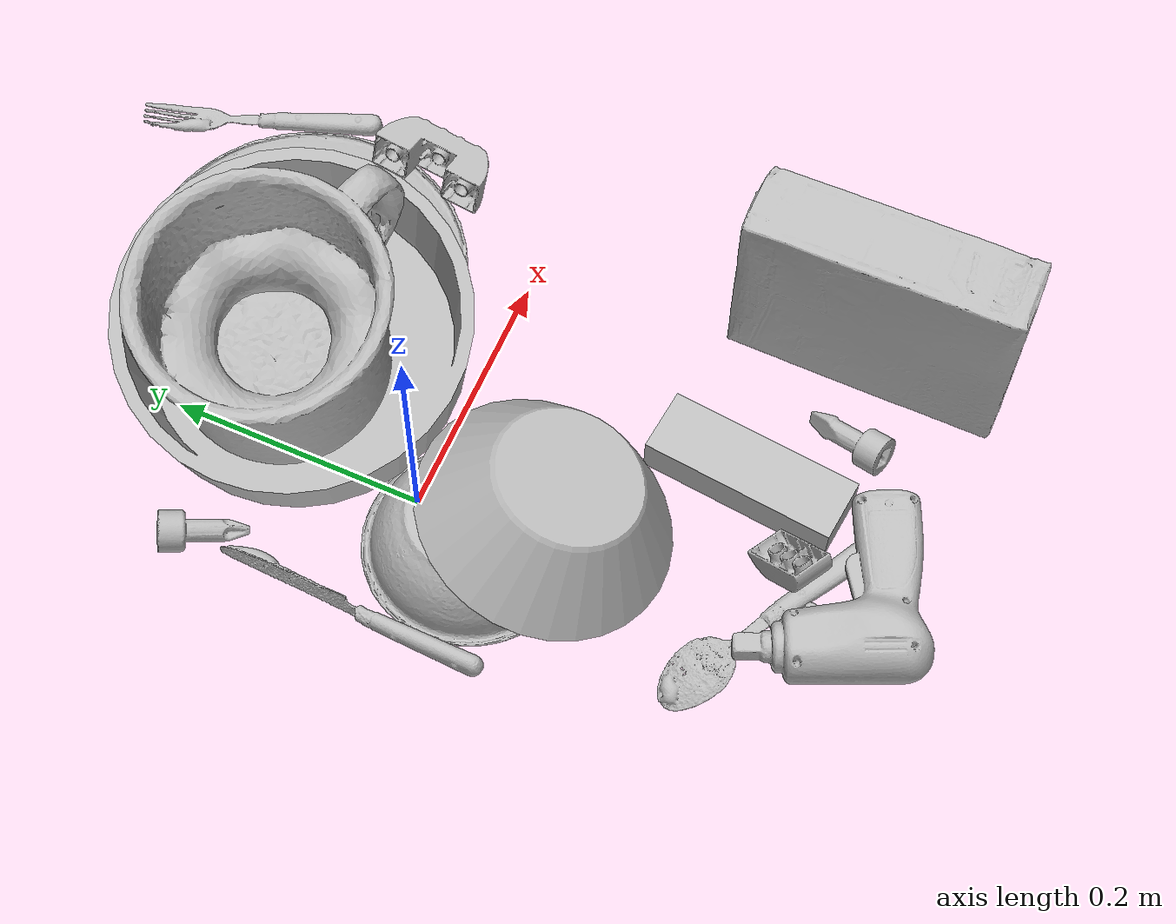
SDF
<sdf version="1.4">
  <world name="default">
    <light name="light1" type="point">
      <pose>0 0 1 0 0 0</pose>
      <diffuse>3 3 3 1</diffuse>
      <specular>3 3 3 1</specular>
    </light>
    <light name="light2" type="point">
      <pose>0 0.5 2 0 0 0</pose>
      <diffuse>1 1 1 1</diffuse>
      <specular>1 1 1 1</specular>
    </light>
    <light name="light3" type="point">
      <pose>0 0.5 2 0 0 0</pose>
      <diffuse>3 3 3 1</diffuse>
      <specular>3 3 3 1</specular>
    </light>
    <scene>
      <ambient>0.7 0.7 0.7</ambient>
    </scene>
    <model name="plate1">
      <link name="link_plate1">
        <collision name="default">
          <geometry>
            <mesh>
              <uri>model://plate/collision_meshes/collision.obj</uri>
              <scale>1.0 1.0 1.0</scale>
            </mesh>
          </geometry>
          <surface>
            <friction>
              <ode>
                <mu>0.5</mu>
                <mu2>0.5</mu2>
              </ode>
            </friction>
          <contact>
        <ode>
            <max_vel>0</max_vel>
            <min_depth>0.0001</min_depth>
            <kp>1e8</kp>
        </ode>
    </contact></surface>
        </collision>
        <visual name="default">
          <geometry>
            <mesh>
              <uri>model://plate/visual_meshes/visual.dae</uri>
              <scale>1.0 1.0 1.0</scale>
            </mesh>
          </geometry>
        </visual>
        <inertial>
          <mass>0.2627958059310913</mass>
          <pose>-0.0006044646725058556 0.00027825895813293755 -0.0010561998933553696 0.0022187866930069794 -0.0032254842153956703 0.4526099982878722</pose>
          <inertia>
            <ixx>0.0012293643</ixx>
            <iyy>0.0012176059</iyy>
            <izz>0.0024044532</izz>
            <ixy>0</ixy>
            <ixz>0</ixz>
            <iyz>0</iyz>
          </inertia>
        </inertial>
      </link>
      <pose>0.14647193253040314 0.17031025886535645 0.013905785977840424 3.1261795248209303 -0.007482211170960726 1.4426795168194604</pose>
    </model>
    <model name="plate2">
      <link name="link_plate2">
        <collision name="default">
          <geometry>
            <mesh>
              <uri>model://pan_tefal/collision_meshes/collision.obj</uri>
              <scale>1.0 1.0 1.0</scale>
            </mesh>
          </geometry>
          <surface>
            <friction>
              <ode>
                <mu>0.5</mu>
                <mu2>0.5</mu2>
              </ode>
            </friction>
          <contact>
        <ode>
            <max_vel>0</max_vel>
            <min_depth>0.0001</min_depth>
            <kp>1e8</kp>
        </ode>
    </contact></surface>
        </collision>
        <visual name="default">
          <geometry>
            <mesh>
              <uri>model://pan_tefal/visual_meshes/visual.dae</uri>
              <scale>1.0 1.0 1.0</scale>
            </mesh>
          </geometry>
        </visual>
        <inertial>
          <mass>1.5012701749801636</mass>
          <pose>-0.00018001999706029892 3.279017983004451e-05 -0.00851493701338768 0.0008190300793188327 -0.0003301349064117064 -0.3318640955526003</pose>
          <inertia>
            <ixx>0.010363197</ixx>
            <iyy>0.010430007</iyy>
            <izz>0.019076647</izz>
            <ixy>0</ixy>
            <ixz>0</ixz>
            <iyz>0</iyz>
          </inertia>
        </inertial>
      </link>
      <pose>0.06326378136873245 0.1251252144575119 0.06278791278600693 0.2046926807515838 0.06008011514812686 -1.4469592234043427</pose>
    </model>
    <model name="bowl1">
      <link name="link_bowl1">
        <collision name="default">
          <geometry>
            <mesh>
              <uri>model://bowl_a/collision_meshes/collision.obj</uri>
              <scale>1.0 1.0 1.0</scale>
            </mesh>
          </geometry>
          <surface>
            <friction>
              <ode>
                <mu>0.5</mu>
                <mu2>0.5</mu2>
              </ode>
            </friction>
          <contact>
        <ode>
            <max_vel>0</max_vel>
            <min_depth>0.0001</min_depth>
            <kp>1e8</kp>
        </ode>
    </contact></surface>
        </collision>
        <visual name="default">
          <geometry>
            <mesh>
              <uri>model://bowl_a/visual_meshes/visual.dae</uri>
              <scale>1.0 1.0 1.0</scale>
            </mesh>
          </geometry>
        </visual>
        <inertial>
          <mass>0.25230005383491516</mass>
          <pose>0.0002786753175314516 4.731153603643179e-05 -0.001376529224216938 -0.000980537182568925 -0.0010938202432478224 -0.19123453155183487</pose>
          <inertia>
            <ixx>0.00071831</ixx>
            <iyy>0.0007227198</iyy>
            <izz>0.0012775414</izz>
            <ixy>0</ixy>
            <ixz>0</ixz>
            <iyz>0</iyz>
          </inertia>
        </inertial>
      </link>
      <pose>0.019057681784033775 -0.10411354899406433 0.05836602300405502 -2.866492677156093 -0.13799679520970576 1.0358916293266425</pose>
    </model>
    <model name="bowl2">
      <link name="link_bowl2">
        <collision name="default">
          <geometry>
            <mesh>
              <uri>model://bowl/collision_meshes/collision.obj</uri>
              <scale>1.0 1.0 1.0</scale>
            </mesh>
          </geometry>
          <surface>
            <friction>
              <ode>
                <mu>0.5</mu>
                <mu2>0.5</mu2>
              </ode>
            </friction>
          <contact>
        <ode>
            <max_vel>0</max_vel>
            <min_depth>0.0001</min_depth>
            <kp>1e8</kp>
        </ode>
    </contact></surface>
        </collision>
        <visual name="default">
          <geometry>
            <mesh>
              <uri>model://bowl/visual_meshes/visual.dae</uri>
              <scale>1.0 1.0 1.0</scale>
            </mesh>
          </geometry>
        </visual>
        <inertial>
          <mass>0.09131127595901489</mass>
          <pose>0.00020444947585929185 -0.0010302107548341155 -0.0008042654953896999 -0.01576413996306862 0.014546728377416086 0.7140363947853973</pose>
          <inertia>
            <ixx>0.00020974927</ixx>
            <iyy>0.00020506265</iyy>
            <izz>0.00035287044</izz>
            <ixy>0</ixy>
            <ixz>0</ixz>
            <iyz>0</iyz>
          </inertia>
        </inertial>
      </link>
      <pose>-0.015676453709602356 -0.05077575892210007 0.027247557416558266 -3.132721375114016 0.0006766823941350178 -2.8428398656737532</pose>
    </model>
    <model name="silverware1">
      <link name="link_silverware1">
        <collision name="default">
          <geometry>
            <mesh>
              <uri>model://knife/collision_meshes/collision.obj</uri>
              <scale>1.0 1.0 1.0</scale>
            </mesh>
          </geometry>
          <surface>
            <friction>
              <ode>
                <mu>0.5</mu>
                <mu2>0.5</mu2>
              </ode>
            </friction>
          <contact>
        <ode>
            <max_vel>0</max_vel>
            <min_depth>0.0001</min_depth>
            <kp>1e8</kp>
        </ode>
    </contact></surface>
        </collision>
        <visual name="default">
          <geometry>
            <mesh>
              <uri>model://knife/visual_meshes/visual.dae</uri>
              <scale>1.0 1.0 1.0</scale>
            </mesh>
          </geometry>
        </visual>
        <inertial>
          <mass>0.033491987735033035</mass>
          <pose>-0.023785259574651718 0.00152751209679991 5.062024501967244e-05 0.07305195921562309 0.017248415702697233 -0.007409822782391368</pose>
          <inertia>
            <ixx>9.5063825e-07</ixx>
            <iyy>0.00012867076</iyy>
            <izz>0.00012897696</izz>
            <ixy>0</ixy>
            <ixz>0</ixz>
            <iyz>0</iyz>
          </inertia>
        </inertial>
      </link>
      <pose>-0.09843502938747406 0.006623029708862305 0.009879286400973797 -1.446264340420278 0.004169540716312294 1.5249890705051545</pose>
    </model>
    <model name="box1">
      <link name="link_box1">
        <collision name="default">
          <geometry>
            <mesh>
              <uri>model://cracker_box/collision_meshes/collision.obj</uri>
              <scale>1.0 1.0 1.0</scale>
            </mesh>
          </geometry>
          <surface>
            <friction>
              <ode>
                <mu>0.5</mu>
                <mu2>0.5</mu2>
              </ode>
            </friction>
          <contact>
        <ode>
            <max_vel>0</max_vel>
            <min_depth>0.0001</min_depth>
            <kp>1e8</kp>
        </ode>
    </contact></surface>
        </collision>
        <visual name="default">
          <geometry>
            <mesh>
              <uri>model://cracker_box/visual_meshes/visual.dae</uri>
              <scale>1.0 1.0 1.0</scale>
            </mesh>
          </geometry>
        </visual>
        <inertial>
          <mass>3.401942253112793</mass>
          <pose>0.0009464150061830878 0.00025434247800149024 -0.001702953246422112 -0.00031620765582640923 -0.011106486806186075 0.0025467954673401043</pose>
          <inertia>
            <ixx>0.008653021</ixx>
            <iyy>0.014287839</iyy>
            <izz>0.020390058</izz>
            <ixy>0</ixy>
            <ixz>0</ixz>
            <iyz>0</iyz>
          </inertia>
        </inertial>
      </link>
      <pose>0.25109466910362244 -0.2623668313026428 0.08175769448280334 1.5452335160817046 0.00904036339948285 1.5684862046521737</pose>
    </model>
    <model name="box2">
      <link name="link_box2">
        <collision name="default">
          <geometry>
            <mesh>
              <uri>model://jenga/collision_meshes/collision.obj</uri>
              <scale>1.0 1.0 1.0</scale>
            </mesh>
          </geometry>
          <surface>
            <friction>
              <ode>
                <mu>0.5</mu>
                <mu2>0.5</mu2>
              </ode>
            </friction>
          <contact>
        <ode>
            <max_vel>0</max_vel>
            <min_depth>0.0001</min_depth>
            <kp>1e8</kp>
        </ode>
    </contact></surface>
        </collision>
        <visual name="default">
          <geometry>
            <mesh>
              <uri>model://jenga/visual_meshes/visual.dae</uri>
              <scale>1.0 1.0 1.0</scale>
            </mesh>
          </geometry>
        </visual>
        <inertial>
          <mass>0.15917322039604187</mass>
          <pose>-2.502856091268768e-07 -0.00010250010382151231 -4.0923405322246253e-05 0.0 -7.34215461761844e-07 0.0</pose>
          <inertia>
            <ixx>4.4047094e-05</ixx>
            <iyy>0.0002984619</iyy>
            <izz>0.00031863348</izz>
            <ixy>0</ixy>
            <ixz>0</ixz>
            <iyz>0</iyz>
          </inertia>
        </inertial>
      </link>
      <pose>0.11344282329082489 -0.21755991876125336 0.01500000525265932 3.1415899893933505 -1.1840138263999769e-07 1.4583955670781077</pose>
    </model>
    <model name="cup1">
      <link name="link_cup1">
        <collision name="default">
          <geometry>
            <mesh>
              <uri>model://mug/collision_meshes/collision.obj</uri>
              <scale>2.0 2.0 2.0</scale>
            </mesh>
          </geometry>
          <surface>
            <friction>
              <ode>
                <mu>0.5</mu>
                <mu2>0.5</mu2>
              </ode>
            </friction>
          <contact>
        <ode>
            <max_vel>0</max_vel>
            <min_depth>0.0001</min_depth>
            <kp>1e8</kp>
        </ode>
    </contact></surface>
        </collision>
        <visual name="default">
          <geometry>
            <mesh>
              <uri>model://mug/visual_meshes/visual.dae</uri>
              <scale>2.0 2.0 2.0</scale>
            </mesh>
          </geometry>
        </visual>
        <inertial>
          <mass>1.8939067125320435</mass>
          <pose>0.019143342971801758 0.0016286505851894617 -0.02189466543495655 -0.12983139039190478 0.08737723243087561 0.05507286357129759</pose>
          <inertia>
            <ixx>0.0075250226</ixx>
            <iyy>0.008405008</iyy>
            <izz>0.009720505</izz>
            <ixy>0</ixy>
            <ixz>0</ixz>
            <iyz>0</iyz>
          </inertia>
        </inertial>
      </link>
      <pose>0.0571303591132164 0.12091873586177826 0.11399954557418823 -0.13657870130442307 0.17326588230354922 2.880420049925952</pose>
    </model>
    <model name="silverware2">
      <link name="link_silverware2">
        <collision name="default">
          <geometry>
            <mesh>
              <uri>model://fork/collision_meshes/collision.obj</uri>
              <scale>1.0 1.0 1.0</scale>
            </mesh>
          </geometry>
          <surface>
            <friction>
              <ode>
                <mu>0.5</mu>
                <mu2>0.5</mu2>
              </ode>
            </friction>
          <contact>
        <ode>
            <max_vel>0</max_vel>
            <min_depth>0.0001</min_depth>
            <kp>1e8</kp>
        </ode>
    </contact></surface>
        </collision>
        <visual name="default">
          <geometry>
            <mesh>
              <uri>model://fork/visual_meshes/visual.dae</uri>
              <scale>1.0 1.0 1.0</scale>
            </mesh>
          </geometry>
        </visual>
        <inertial>
          <mass>0.01107261423021555</mass>
          <pose>-0.02957005240023136 0.00046588238910771906 0.0003218861820641905 -0.01355183639158028 -0.010977839693189282 0.014453902572364752</pose>
          <inertia>
            <ixx>3.8815773e-07</ixx>
            <iyy>2.8907412e-05</iyy>
            <izz>2.9081024e-05</izz>
            <ixy>0</ixy>
            <ixz>0</ixz>
            <iyz>0</iyz>
          </inertia>
        </inertial>
      </link>
      <pose>0.2601158916950226 0.2657054364681244 0.005800535902380943 0.12492048038727356 0.033249716619100214 1.9194497532283703</pose>
    </model>
    <model name="silverware3">
      <link name="link_silverware3">
        <collision name="default">
          <geometry>
            <mesh>
              <uri>model://spoon/collision_meshes/collision.obj</uri>
              <scale>1.0 1.0 1.0</scale>
            </mesh>
          </geometry>
          <surface>
            <friction>
              <ode>
                <mu>0.5</mu>
                <mu2>0.5</mu2>
              </ode>
            </friction>
          <contact>
        <ode>
            <max_vel>0</max_vel>
            <min_depth>0.0001</min_depth>
            <kp>1e8</kp>
        </ode>
    </contact></surface>
        </collision>
        <visual name="default">
          <geometry>
            <mesh>
              <uri>model://spoon/visual_meshes/visual.dae</uri>
              <scale>1.0 1.0 1.0</scale>
            </mesh>
          </geometry>
        </visual>
        <inertial>
          <mass>0.03720218688249588</mass>
          <pose>-0.005526323337107897 -0.00160341733135283 -0.0007271655485965312 0.035216710753312216 -0.03906584126265578 0.006150608185168733</pose>
          <inertia>
            <ixx>2.0692462e-06</ixx>
            <iyy>0.00014155307</iyy>
            <izz>0.00014257352</izz>
            <ixy>0</ixy>
            <ixz>0</ixz>
            <iyz>0</iyz>
          </inertia>
        </inertial>
      </link>
      <pose>0.011928988620638847 -0.2691631019115448 0.010134502314031124 3.104542104977265 -0.06196295935918673 2.640790796750385</pose>
    </model>
    <model name="toy1">
      <link name="link_toy1">
        <collision name="default">
          <geometry>
            <mesh>
              <uri>model://e_toy_airplane/collision_meshes/collision.obj</uri>
              <scale>1.0 1.0 1.0</scale>
            </mesh>
          </geometry>
          <surface>
            <friction>
              <ode>
                <mu>0.5</mu>
                <mu2>0.5</mu2>
              </ode>
            </friction>
          <contact>
        <ode>
            <max_vel>0</max_vel>
            <min_depth>0.0001</min_depth>
            <kp>1e8</kp>
        </ode>
    </contact></surface>
        </collision>
        <visual name="default">
          <geometry>
            <mesh>
              <uri>model://e_toy_airplane/visual_meshes/visual.dae</uri>
              <scale>1.0 1.0 1.0</scale>
            </mesh>
          </geometry>
        </visual>
        <inertial>
          <mass>0.02491888962686062</mass>
          <pose>0.00011740486661437899 -2.248287455586251e-05 -0.011187204159796238 0.00551850201937057 0.009228289896812953 0.1504152046419029</pose>
          <inertia>
            <ixx>7.60553e-06</ixx>
            <iyy>7.52773e-06</iyy>
            <izz>2.2857607e-06</izz>
            <ixy>0</ixy>
            <ixz>0</ixz>
            <iyz>0</iyz>
          </inertia>
        </inertial>
      </link>
      <pose>0.1726350486278534 -0.2726801633834839 0.012304617092013359 -1.7500129612191253 0.2698094591713425 -0.3041568337703618</pose>
    </model>
    <model name="toy2">
      <link name="link_toy2">
        <collision name="default">
          <geometry>
            <mesh>
              <uri>model://e_lego_duplo/collision_meshes/collision.obj</uri>
              <scale>1.0 1.0 1.0</scale>
            </mesh>
          </geometry>
          <surface>
            <friction>
              <ode>
                <mu>0.5</mu>
                <mu2>0.5</mu2>
              </ode>
            </friction>
          <contact>
        <ode>
            <max_vel>0</max_vel>
            <min_depth>0.0001</min_depth>
            <kp>1e8</kp>
        </ode>
    </contact></surface>
        </collision>
        <visual name="default">
          <geometry>
            <mesh>
              <uri>model://e_lego_duplo/visual_meshes/visual.dae</uri>
              <scale>1.0 1.0 1.0</scale>
            </mesh>
          </geometry>
        </visual>
        <inertial>
          <mass>0.08635181933641434</mass>
          <pose>0.00032560451654717326 0.0002348542184336111 0.0019521444337442517 -0.022567902749969417 -6.824781923482006e-05 -0.00762515629770681</pose>
          <inertia>
            <ixx>1.8007207e-05</ixx>
            <iyy>7.390619e-05</iyy>
            <izz>7.1969785e-05</izz>
            <ixy>0</ixy>
            <ixz>0</ixz>
            <iyz>0</iyz>
          </inertia>
        </inertial>
      </link>
      <pose>0.2737070918083191 0.11213141679763794 0.02152271941304207 1.8059333091579244 -0.07205250327769377 1.4758864456666332</pose>
    </model>
    <model name="toy3">
      <link name="link_toy3">
        <collision name="default">
          <geometry>
            <mesh>
              <uri>model://d_toy_airplane/collision_meshes/collision.obj</uri>
              <scale>1.0 1.0 1.0</scale>
            </mesh>
          </geometry>
          <surface>
            <friction>
              <ode>
                <mu>0.5</mu>
                <mu2>0.5</mu2>
              </ode>
            </friction>
          <contact>
        <ode>
            <max_vel>0</max_vel>
            <min_depth>0.0001</min_depth>
            <kp>1e8</kp>
        </ode>
    </contact></surface>
        </collision>
        <visual name="default">
          <geometry>
            <mesh>
              <uri>model://d_toy_airplane/visual_meshes/visual.dae</uri>
              <scale>1.0 1.0 1.0</scale>
            </mesh>
          </geometry>
        </visual>
        <inertial>
          <mass>0.01398532185703516</mass>
          <pose>9.410311031388119e-05 -5.809316644445062e-05 -0.011728093959391117 0.00026700916858413164 0.004678987951971881 0.5194708538811167</pose>
          <inertia>
            <ixx>4.1925277e-06</ixx>
            <iyy>4.1956896e-06</iyy>
            <izz>1.2657512e-06</izz>
            <ixy>0</ixy>
            <ixz>0</ixz>
            <iyz>0</iyz>
          </inertia>
        </inertial>
      </link>
      <pose>-0.08886688947677612 0.12926864624023438 0.012038422748446465 -1.8698202963103905 0.8596104409840228 -2.8450687240442263</pose>
    </model>
    <model name="toy4">
      <link name="link_toy4">
        <collision name="default">
          <geometry>
            <mesh>
              <uri>model://b_toy_airplane/collision_meshes/collision.obj</uri>
              <scale>1.0 1.0 1.0</scale>
            </mesh>
          </geometry>
          <surface>
            <friction>
              <ode>
                <mu>0.5</mu>
                <mu2>0.5</mu2>
              </ode>
            </friction>
          <contact>
        <ode>
            <max_vel>0</max_vel>
            <min_depth>0.0001</min_depth>
            <kp>1e8</kp>
        </ode>
    </contact></surface>
        </collision>
        <visual name="default">
          <geometry>
            <mesh>
              <uri>model://b_toy_airplane/visual_meshes/visual.dae</uri>
              <scale>1.0 1.0 1.0</scale>
            </mesh>
          </geometry>
        </visual>
        <inertial>
          <mass>0.39888885617256165</mass>
          <pose>0.00508136348798871 0.0040155863389372826 0.009543065913021564 -0.04001810285123905 -0.040221831504284974 -0.560150355465512</pose>
          <inertia>
            <ixx>0.00074054446</ixx>
            <iyy>0.00029600295</iyy>
            <izz>0.00092131115</izz>
            <ixy>0</ixy>
            <ixz>0</ixz>
            <iyz>0</iyz>
          </inertia>
        </inertial>
      </link>
      <pose>0.04030274972319603 -0.33381059765815735 0.019373944029211998 0.058011722991147714 0.06946676303075353 1.9739186732832068</pose>
    </model>
    <model name="toy5">
      <link name="link_toy5">
        <collision name="default">
          <geometry>
            <mesh>
              <uri>model://a_lego_duplo/collision_meshes/collision.obj</uri>
              <scale>1.0 1.0 1.0</scale>
            </mesh>
          </geometry>
          <surface>
            <friction>
              <ode>
                <mu>0.5</mu>
                <mu2>0.5</mu2>
              </ode>
            </friction>
          <contact>
        <ode>
            <max_vel>0</max_vel>
            <min_depth>0.0001</min_depth>
            <kp>1e8</kp>
        </ode>
    </contact></surface>
        </collision>
        <visual name="default">
          <geometry>
            <mesh>
              <uri>model://a_lego_duplo/visual_meshes/visual.dae</uri>
              <scale>1.0 1.0 1.0</scale>
            </mesh>
          </geometry>
        </visual>
        <inertial>
          <mass>0.014756478369235992</mass>
          <pose>-0.00011337623436702415 0.00018517495482228696 0.00036926049506291747 -0.01411700810413075 -0.00012565743579302476 6.142605902116464e-05</pose>
          <inertia>
            <ixx>1.8918981e-06</ixx>
            <iyy>4.238266e-06</iyy>
            <izz>5.250033e-06</izz>
            <ixy>0</ixy>
            <ixz>0</ixz>
            <iyz>0</iyz>
          </inertia>
        </inertial>
      </link>
      <pose>0.05482177436351776 -0.27290546894073486 0.019260289147496223 3.1378937236847166 0.7161693653971751 1.0289683027764014</pose>
    </model>
  <physics type="ode">
      <max_contacts>50</max_contacts>
      <ode>
        <solver>
          <type>quick</type>
          <iters>75</iters>
        </solver>
        <constraints>
          <contact_max_correcting_vel>0</contact_max_correcting_vel>
          <contact_surface_layer>0</contact_surface_layer>
        </constraints>
      </ode>
    </physics></world>
</sdf>
